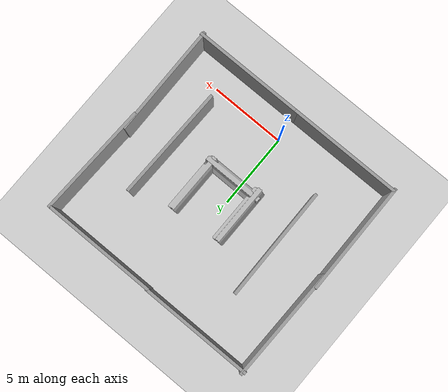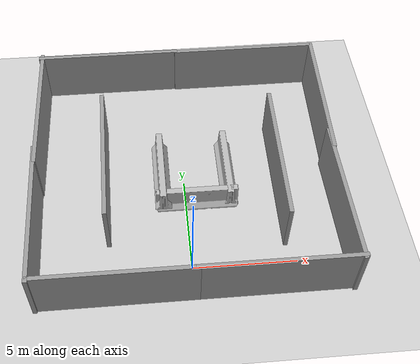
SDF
<sdf version="1.6">
 <world name="default">
  <light name="sun" type="directional">
   <pose>0 0 10 0 -0 0</pose>
   <diffuse>0.8 0.8 0.8 1</diffuse>
   <specular>0.1 0.1 0.1 1</specular>
   <attenuation>
    <range>1000</range>
    <constant>0.9</constant>
    <linear>0.01</linear>
    <quadratic>0.001</quadratic>
   </attenuation>
   <direction>-0.5 0.5 -1</direction>
  </light>
  <model name="ground_plane">
   <static>1</static>
   <link name="link">
    <collision name="collision">
     <geometry><plane><normal>0 0 1</normal><size>100 100</size></plane></geometry>
     <surface><friction><ode><mu>100</mu><mu2>50</mu2></ode></friction></surface>
    </collision>
    <visual name="visual">
     <cast_shadows>0</cast_shadows>
     <geometry><plane><normal>0 0 1</normal><size>100 100</size></plane></geometry>
     <material>
      <script><uri>file://media/materials/scripts/gazebo.material</uri><name>Gazebo/Grey</name></script>
     </material>
    </visual>
   </link>
  </model>
  <gravity>0 0 -9.8</gravity>
  <magnetic_field>6e-06 2.3e-05 -4.2e-05</magnetic_field>
  <atmosphere type="adiabatic"/>
  <physics name="default_physics" default="0" type="ode">
   <max_step_size>0.01</max_step_size>
   <real_time_factor>1</real_time_factor>
   <real_time_update_rate>0</real_time_update_rate>
  </physics>
  <scene><ambient>0.4 0.4 0.4 1</ambient><background>0.7 0.7 0.7 1</background><shadows>1</shadows></scene>
  <spherical_coordinates>
   <surface_model>EARTH_WGS84</surface_model>
   <latitude_deg>0</latitude_deg>
   <longitude_deg>0</longitude_deg>
   <elevation>0</elevation>
   <heading_deg>0</heading_deg>
  </spherical_coordinates>
  <model name="heacteWorld">
   <link name="link">
    <pose>-4.73689 -1.62555 1.4 0 -0 0</pose>
    <visual name="visual">
     <cast_shadows>0</cast_shadows>
     <geometry><box><size>7.5 0.2 2.8</size></box></geometry>
     <material>
      <script>
       <uri>model://grey_wall/materials/scripts</uri>
       <uri>model://grey_wall/materials/textures</uri>
       <name>vrc/grey_wall</name>
      </script>
      <shader type="pixel"/>
      <ambient>1 1 1 1</ambient>
      <diffuse>1 1 1 1</diffuse>
      <specular>0 0 0 1</specular>
      <emissive>0 0 0 1</emissive>
     </material>
    </visual>
    <collision name="collision">
     <geometry><box><size>7.5 0.2 2.8</size></box></geometry>
     <surface>
      <friction>
       <ode><mu>1</mu><mu2>1</mu2><fdir1>0 0 0</fdir1><slip1>0</slip1><slip2>0</slip2></ode>
       <torsional>
        <coefficient>1</coefficient>
        <patch_radius>0</patch_radius>
        <surface_radius>0</surface_radius>
        <use_patch_radius>1</use_patch_radius>
        <ode><slip>0</slip></ode>
       </torsional>
      </friction>
      <bounce><restitution_coefficient>0</restitution_coefficient><threshold>1e+06</threshold></bounce>
      <contact>
       <collide_without_contact>0</collide_without_contact>
       <collide_without_contact_bitmask>1</collide_without_contact_bitmask>
       <collide_bitmask>1</collide_bitmask>
       <ode>
        <soft_cfm>0</soft_cfm>
        <soft_erp>0.2</soft_erp>
        <kp>1e+13</kp>
        <kd>1</kd>
        <max_vel>0.01</max_vel>
        <min_depth>0</min_depth>
       </ode>
       <bullet>
        <split_impulse>1</split_impulse>
        <split_impulse_penetration_threshold>-0.01</split_impulse_penetration_threshold>
        <soft_cfm>0</soft_cfm>
        <soft_erp>0.2</soft_erp>
        <kp>1e+13</kp>
        <kd>1</kd>
       </bullet>
      </contact>
     </surface>
    </collision>
   </link>
   <model name="grey_wall">
    <static>1</static>
    <link name="link">
     <pose>0 0 1.4 0 -0 0</pose>
     <collision name="collision"><geometry><box><size>7.5 0.2 2.8</size></box></geometry></collision>
     <visual name="visual">
      <cast_shadows>0</cast_shadows>
      <geometry><box><size>7.5 0.2 2.8</size></box></geometry>
      <material>
       <script>
        <uri>model://grey_wall/materials/scripts</uri>
        <uri>model://grey_wall/materials/textures</uri>
        <name>vrc/grey_wall</name>
       </script>
      </material>
     </visual>
    </link>
    <pose>2.53785 -1.62205 0 0 -0 0</pose>
   </model>
   <model name="grey_wall_0">
    <static>1</static>
    <link name="link">
     <pose>0 0 1.4 0 -0 0</pose>
     <collision name="collision"><geometry><box><size>7.5 0.2 2.8</size></box></geometry></collision>
     <visual name="visual">
      <cast_shadows>0</cast_shadows>
      <geometry><box><size>7.5 0.2 2.8</size></box></geometry>
      <material>
       <script>
        <uri>model://grey_wall/materials/scripts</uri>
        <uri>model://grey_wall/materials/textures</uri>
        <name>vrc/grey_wall</name>
       </script>
      </material>
     </visual>
    </link>
    <pose>-8.46057 1.93993 0 0 0 -1.5634</pose>
   </model>
   <model name="grey_wall_1">
    <static>1</static>
    <link name="link">
     <pose>0 0 1.4 0 -0 0</pose>
     <collision name="collision"><geometry><box><size>7.5 0.2 2.8</size></box></geometry></collision>
     <visual name="visual">
      <cast_shadows>0</cast_shadows>
      <geometry><box><size>7.5 0.2 2.8</size></box></geometry>
      <material>
       <script>
        <uri>model://grey_wall/materials/scripts</uri>
        <uri>model://grey_wall/materials/textures</uri>
        <name>vrc/grey_wall</name>
       </script>
      </material>
     </visual>
    </link>
    <pose>6.09343 1.93281 0 0 0 -1.56168</pose>
   </model>
   <model name="grey_wall_2">
    <static>1</static>
    <link name="link">
     <pose>0 0 1.4 0 -0 0</pose>
     <collision name="collision"><geometry><box><size>7.5 0.2 2.8</size></box></geometry></collision>
     <visual name="visual">
      <cast_shadows>0</cast_shadows>
      <geometry><box><size>7.5 0.2 2.8</size></box></geometry>
      <material>
       <script>
        <uri>model://grey_wall/materials/scripts</uri>
        <uri>model://grey_wall/materials/textures</uri>
        <name>vrc/grey_wall</name>
       </script>
      </material>
     </visual>
    </link>
    <pose>2.58998 11.9269 0 0 -0 0</pose>
   </model>
   <model name="grey_wall_3">
    <static>1</static>
    <link name="link">
     <pose>0 0 1.4 0 -0 0</pose>
     <collision name="collision"><geometry><box><size>7.5 0.2 2.8</size></box></geometry></collision>
     <visual name="visual">
      <cast_shadows>0</cast_shadows>
      <geometry><box><size>7.5 0.2 2.8</size></box></geometry>
      <material>
       <script>
        <uri>model://grey_wall/materials/scripts</uri>
        <uri>model://grey_wall/materials/textures</uri>
        <name>vrc/grey_wall</name>
       </script>
      </material>
     </visual>
    </link>
    <pose>6.25123 8.2659 -0 0 0 -1.60551</pose>
   </model>
   <model name="grey_wall_4">
    <static>1</static>
    <link name="link">
     <pose>0 0 1.4 0 -0 0</pose>
     <collision name="collision"><geometry><box><size>7.5 0.2 2.8</size></box></geometry></collision>
     <visual name="visual">
      <cast_shadows>0</cast_shadows>
      <geometry><box><size>7.5 0.2 2.8</size></box></geometry>
      <material>
       <script>
        <uri>model://grey_wall/materials/scripts</uri>
        <uri>model://grey_wall/materials/textures</uri>
        <name>vrc/grey_wall</name>
       </script>
      </material>
     </visual>
    </link>
    <pose>-4.75873 11.971 0 0 -0 0</pose>
   </model>
   <model name="grey_wall_5">
    <static>1</static>
    <link name="link">
     <pose>0 0 1.4 0 -0 0</pose>
     <collision name="collision"><geometry><box><size>7.5 0.2 2.8</size></box></geometry></collision>
     <visual name="visual">
      <cast_shadows>0</cast_shadows>
      <geometry><box><size>7.5 0.2 2.8</size></box></geometry>
      <material>
       <script>
        <uri>model://grey_wall/materials/scripts</uri>
        <uri>model://grey_wall/materials/textures</uri>
        <name>vrc/grey_wall</name>
       </script>
      </material>
     </visual>
    </link>
    <pose>-8.37765 8.46457 0 0 -0 1.55653</pose>
   </model>
   <model name="grey_wall_6">
    <static>1</static>
    <link name="link">
     <pose>0 0 1.4 0 -0 0</pose>
     <collision name="collision"><geometry><box><size>7.5 0.2 2.8</size></box></geometry></collision>
     <visual name="visual">
      <cast_shadows>0</cast_shadows>
      <geometry><box><size>7.5 0.2 2.8</size></box></geometry>
      <material>
       <script>
        <uri>model://grey_wall/materials/scripts</uri>
        <uri>model://grey_wall/materials/textures</uri>
        <name>vrc/grey_wall</name>
       </script>
      </material>
     </visual>
    </link>
    <pose>3.42122 4.58251 0 0 0 -1.59009</pose>
   </model>
   <model name="grey_wall_7">
    <static>1</static>
    <link name="link">
     <pose>0 0 1.4 0 -0 0</pose>
     <collision name="collision"><geometry><box><size>7.5 0.2 2.8</size></box></geometry></collision>
     <visual name="visual">
      <cast_shadows>0</cast_shadows>
      <geometry><box><size>7.5 0.2 2.8</size></box></geometry>
      <material>
       <script>
        <uri>model://grey_wall/materials/scripts</uri>
        <uri>model://grey_wall/materials/textures</uri>
        <name>vrc/grey_wall</name>
       </script>
      </material>
     </visual>
    </link>
    <pose>-5.1133 5.15809 0 0 0 -1.56288</pose>
   </model>
   <model name="jersey_barrier">
    <static>1</static>
    <link name="link">
     <visual name="visual">
      <geometry><mesh><uri>model://jersey_barrier/meshes/jersey_barrier.dae</uri></mesh></geometry>
     </visual>
     <collision name="upright">
      <pose>0 0 0.5715 0 -0 0</pose>
      <geometry><box><size>4.06542 0.3063 1.143</size></box></geometry>
     </collision>
     <collision name="base">
      <pose>0 0 0.032258 0 -0 0</pose>
      <geometry><box><size>4.06542 0.8107 0.064516</size></box></geometry>
     </collision>
     <collision name="base2">
      <pose>0 0 0.1 0 -0 0</pose>
      <geometry><box><size>4.06542 0.65 0.1</size></box></geometry>
     </collision>
     <collision name="base3">
      <pose>0 0 0.2 0 -0 0</pose>
      <geometry><box><size>4.06542 0.5 0.1</size></box></geometry>
     </collision>
     <collision name="left-angle">
      <pose>0 -0.224 0.2401 0.9 -0 0</pose>
      <geometry><box><size>4.06542 0.5 0.064516</size></box></geometry>
     </collision>
     <collision name="right-angle">
      <pose>0 0.224 0.2401 -0.9 0 0</pose>
      <geometry><box><size>4.06542 0.5 0.064516</size></box></geometry>
     </collision>
    </link>
    <pose>-0.653233 3.66959 0 0 -0 0</pose>
   </model>
   <model name="jersey_barrier_0">
    <static>1</static>
    <link name="link">
     <visual name="visual">
      <geometry><mesh><uri>model://jersey_barrier/meshes/jersey_barrier.dae</uri></mesh></geometry>
     </visual>
     <collision name="upright">
      <pose>0 0 0.5715 0 -0 0</pose>
      <geometry><box><size>4.06542 0.3063 1.143</size></box></geometry>
     </collision>
     <collision name="base">
      <pose>0 0 0.032258 0 -0 0</pose>
      <geometry><box><size>4.06542 0.8107 0.064516</size></box></geometry>
     </collision>
     <collision name="base2">
      <pose>0 0 0.1 0 -0 0</pose>
      <geometry><box><size>4.06542 0.65 0.1</size></box></geometry>
     </collision>
     <collision name="base3">
      <pose>0 0 0.2 0 -0 0</pose>
      <geometry><box><size>4.06542 0.5 0.1</size></box></geometry>
     </collision>
     <collision name="left-angle">
      <pose>0 -0.224 0.2401 0.9 -0 0</pose>
      <geometry><box><size>4.06542 0.5 0.064516</size></box></geometry>
     </collision>
     <collision name="right-angle">
      <pose>0 0.224 0.2401 -0.9 0 0</pose>
      <geometry><box><size>4.06542 0.5 0.064516</size></box></geometry>
     </collision>
    </link>
    <pose>-2.33373 5.14289 0.350107 0 -0 1.57031</pose>
   </model>
   <model name="jersey_barrier_1">
    <static>1</static>
    <link name="link">
     <visual name="visual">
      <geometry><mesh><uri>model://jersey_barrier/meshes/jersey_barrier.dae</uri></mesh></geometry>
     </visual>
     <collision name="upright">
      <pose>0 0 0.5715 0 -0 0</pose>
      <geometry><box><size>4.06542 0.3063 1.143</size></box></geometry>
     </collision>
     <collision name="base">
      <pose>0 0 0.032258 0 -0 0</pose>
      <geometry><box><size>4.06542 0.8107 0.064516</size></box></geometry>
     </collision>
     <collision name="base2">
      <pose>0 0 0.1 0 -0 0</pose>
      <geometry><box><size>4.06542 0.65 0.1</size></box></geometry>
     </collision>
     <collision name="base3">
      <pose>0 0 0.2 0 -0 0</pose>
      <geometry><box><size>4.06542 0.5 0.1</size></box></geometry>
     </collision>
     <collision name="left-angle">
      <pose>0 -0.224 0.2401 0.9 -0 0</pose>
      <geometry><box><size>4.06542 0.5 0.064516</size></box></geometry>
     </collision>
     <collision name="right-angle">
      <pose>0 0.224 0.2401 -0.9 0 0</pose>
      <geometry><box><size>4.06542 0.5 0.064516</size></box></geometry>
     </collision>
    </link>
    <pose>1.01403 5.3906 0 0 0 -1.57439</pose>
   </model>
   <static>1</static>
   <pose>1.21948 0.079396 0 0 -0 0</pose>
  </model>
 </world>
</sdf>
